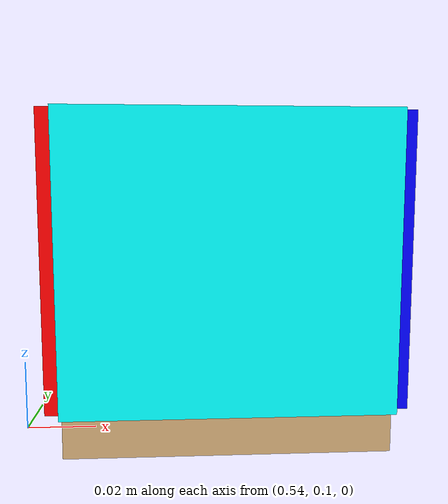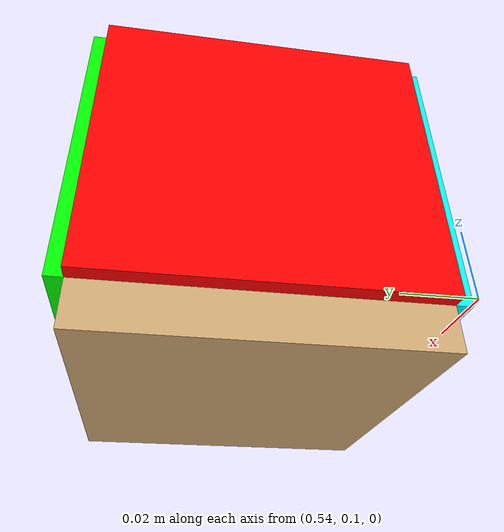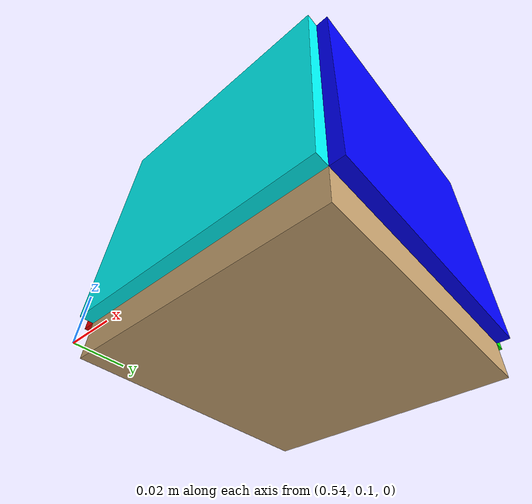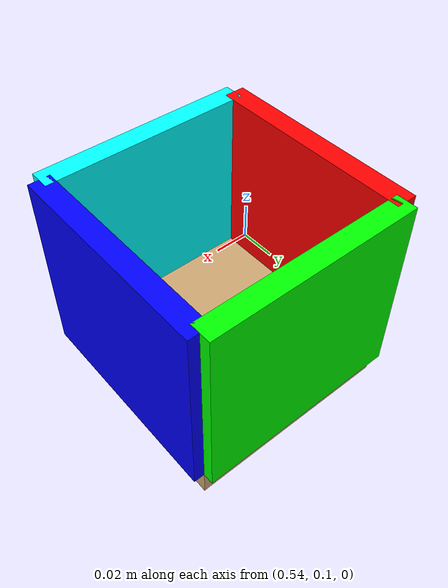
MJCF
<mujoco model="pushed_box">
    <worldbody>
        <body name="pushed_box" pos="0.6 0.15 0.0" quat="1 0 0 0">
            <geom pos="0 0 0" size="0.05 0.05 0.01" rgba="0.8 0.655 0.45 1.0" type="box" mass="1.0" friction="0.3 0.001 0.0001" priority="1"/>
            <geom pos="0.05 0 0.0485" size="0.005 0.05 0.045" rgba="0 0 1 1.0" type="box" mass="0.001"/>
            <geom pos="0 0.05 0.0485" size="0.05 0.005 0.045" rgba="0 1 0 1.0" type="box" mass="0.001"/>
            <geom pos="-0.05 0 0.0485" size="0.005 0.05 0.045" rgba="1 0 0 1.0" type="box" mass="0.001"/>
            <geom pos="0 -0.05 0.0485" size="0.05 0.005 0.045" rgba="0 1 1 1.0" type="box" mass="0.001"/>

            <joint name="box_joint" type="free"/>
        </body>
    </worldbody>
</mujoco>
